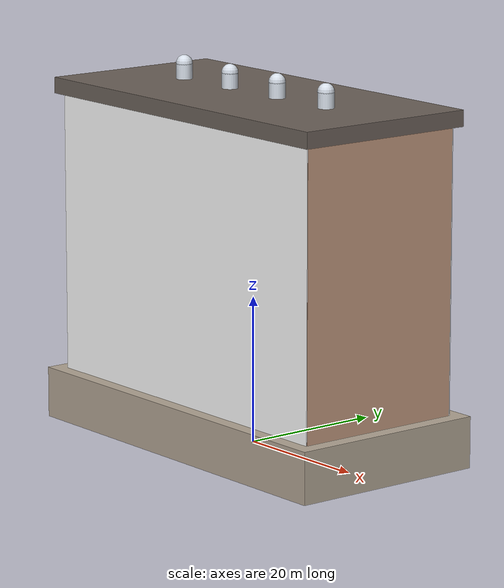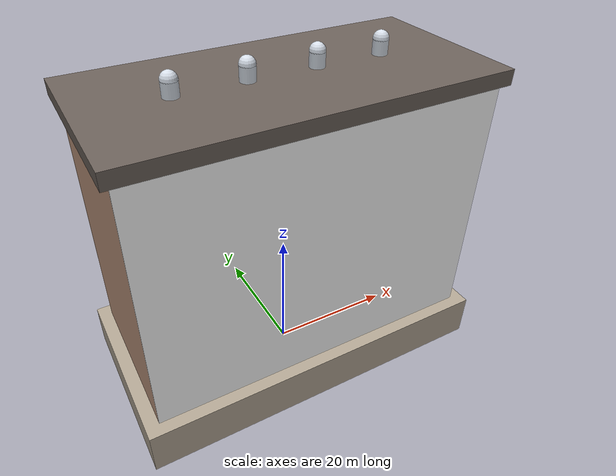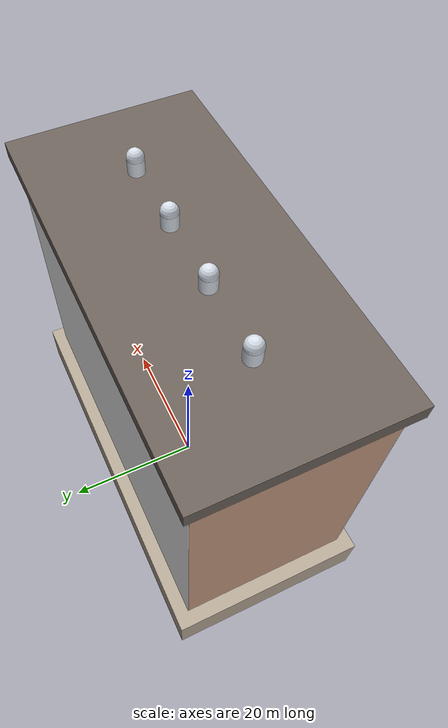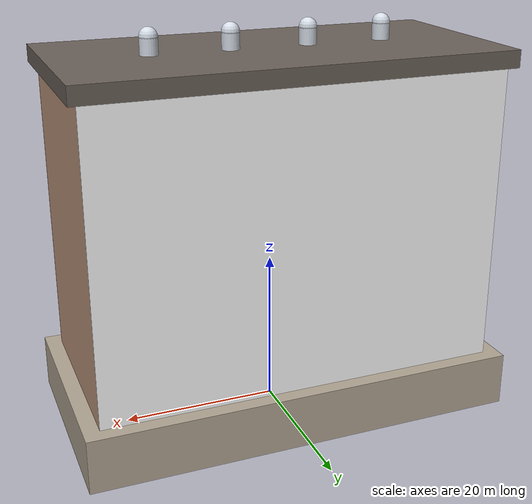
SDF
<?xml version="1.0" ?>
<sdf version="1.8">
  <model name="changyi_danmark_residence">
    <static>true</static>
    <link name="bldg_link">
      <collision name="podium_col">
        <pose>0 0 3.5 0 0 0</pose>
        <geometry><box><size>56.0 28.0 7.0</size></box></geometry>
      </collision>
      <collision name="tower_col">
        <pose>0 0 24.5 0 0 0</pose>
        <geometry><box><size>52.0 24.0 42.0</size></box></geometry>
      </collision>

      <!-- 1F 歐洲村石材基座與精品騎樓結構 -->
      <visual name="podium_base">
        <pose>0 0 3.5 0 0 0</pose>
        <geometry><box><size>56.0 28.0 7.0</size></box></geometry>
        <material>
          <ambient>0.62 0.58 0.52 1</ambient>
          <diffuse>0.70 0.65 0.58 1</diffuse>
          <specular>0.4 0.4 0.4 1</specular>
        </material>
      </visual>

      <!-- 塔樓主體結構 (14F) -->
      <visual name="tower_main">
        <pose>0 0 24.5 0 0 0</pose>
        <geometry><box><size>52.0 24.0 42.0</size></box></geometry>
        <material>
          <ambient>0.68 0.52 0.44 1</ambient>
          <diffuse>0.76 0.60 0.50 1</diffuse>
        </material>
      </visual>

      <!-- ==================== 昌益丹麥 台灣特色二丁掛陶質面磚與古典框架高清表皮 ==================== -->
      <!-- 正立面 (Front Facade Facing North / Street) -->
      <visual name="danmark_facade_front_vis">
        <pose>0 12.06 24.5 0 0 0</pose>
        <geometry><box><size>52.0 0.10 42.0</size></box></geometry>
        <material>
          <diffuse>1 1 1 1</diffuse>
          <pbr>
            <metal>
              <albedo_map>model://changyi_danmark_residence/materials/textures/changyi_danmark_tile_facade.png</albedo_map>
              <roughness>0.38</roughness>
              <metalness>0.08</metalness>
            </metal>
          </pbr>
        </material>
      </visual>

      <!-- 背立面 (Rear Facade Facing South) -->
      <visual name="danmark_facade_back_vis">
        <pose>0 -12.06 24.5 0 0 3.14159</pose>
        <geometry><box><size>52.0 0.10 42.0</size></box></geometry>
        <material>
          <diffuse>1 1 1 1</diffuse>
          <pbr>
            <metal>
              <albedo_map>model://changyi_danmark_residence/materials/textures/changyi_danmark_tile_facade.png</albedo_map>
              <roughness>0.38</roughness>
              <metalness>0.08</metalness>
            </metal>
          </pbr>
        </material>
      </visual>

      <!-- 歐式古典屋頂飛簷與頂部冠頂 (Crown Cornice) -->
      <visual name="roof_crown">
        <pose>0 0 46.5 0 0 0</pose>
        <geometry><box><size>54.0 26.0 2.2</size></box></geometry>
        <material>
          <ambient>0.35 0.32 0.30 1</ambient>
          <diffuse>0.42 0.38 0.35 1</diffuse>
        </material>
      </visual>

      <!-- ==================== 台灣特色天際線：頂樓高層不鏽鋼水塔四聯陣列 ==================== -->
      <!-- 水塔 1 -->
      <visual name="water_tank_1">
        <pose>-15.0 0 48.6 0 0 0</pose>
        <geometry><cylinder><radius>1.1</radius><length>2.2</length></cylinder></geometry>
        <material><ambient>0.75 0.78 0.82 1</ambient><diffuse>0.85 0.88 0.92 1</diffuse><pbr><metal><roughness>0.15</roughness><metalness>0.92</metalness></metal></pbr></material>
      </visual>
      <visual name="water_tank_1_dome">
        <pose>-15.0 0 49.75 0 0 0</pose>
        <geometry><sphere><radius>1.12</radius></sphere></geometry>
        <material><ambient>0.75 0.78 0.82 1</ambient><diffuse>0.85 0.88 0.92 1</diffuse><pbr><metal><roughness>0.15</roughness><metalness>0.92</metalness></metal></pbr></material>
      </visual>

      <!-- 水塔 2 -->
      <visual name="water_tank_2">
        <pose>-5.0 0 48.6 0 0 0</pose>
        <geometry><cylinder><radius>1.1</radius><length>2.2</length></cylinder></geometry>
        <material><ambient>0.75 0.78 0.82 1</ambient><diffuse>0.85 0.88 0.92 1</diffuse><pbr><metal><roughness>0.15</roughness><metalness>0.92</metalness></metal></pbr></material>
      </visual>
      <visual name="water_tank_2_dome">
        <pose>-5.0 0 49.75 0 0 0</pose>
        <geometry><sphere><radius>1.12</radius></sphere></geometry>
        <material><ambient>0.75 0.78 0.82 1</ambient><diffuse>0.85 0.88 0.92 1</diffuse><pbr><metal><roughness>0.15</roughness><metalness>0.92</metalness></metal></pbr></material>
      </visual>

      <!-- 水塔 3 -->
      <visual name="water_tank_3">
        <pose>5.0 0 48.6 0 0 0</pose>
        <geometry><cylinder><radius>1.1</radius><length>2.2</length></cylinder></geometry>
        <material><ambient>0.75 0.78 0.82 1</ambient><diffuse>0.85 0.88 0.92 1</diffuse><pbr><metal><roughness>0.15</roughness><metalness>0.92</metalness></metal></pbr></material>
      </visual>
      <visual name="water_tank_3_dome">
        <pose>5.0 0 49.75 0 0 0</pose>
        <geometry><sphere><radius>1.12</radius></sphere></geometry>
        <material><ambient>0.75 0.78 0.82 1</ambient><diffuse>0.85 0.88 0.92 1</diffuse><pbr><metal><roughness>0.15</roughness><metalness>0.92</metalness></metal></pbr></material>
      </visual>

      <!-- 水塔 4 -->
      <visual name="water_tank_4">
        <pose>15.0 0 48.6 0 0 0</pose>
        <geometry><cylinder><radius>1.1</radius><length>2.2</length></cylinder></geometry>
        <material><ambient>0.75 0.78 0.82 1</ambient><diffuse>0.85 0.88 0.92 1</diffuse><pbr><metal><roughness>0.15</roughness><metalness>0.92</metalness></metal></pbr></material>
      </visual>
      <visual name="water_tank_4_dome">
        <pose>15.0 0 49.75 0 0 0</pose>
        <geometry><sphere><radius>1.12</radius></sphere></geometry>
        <material><ambient>0.75 0.78 0.82 1</ambient><diffuse>0.85 0.88 0.92 1</diffuse><pbr><metal><roughness>0.15</roughness><metalness>0.92</metalness></metal></pbr></material>
      </visual>

    </link>
  </model>
</sdf>
